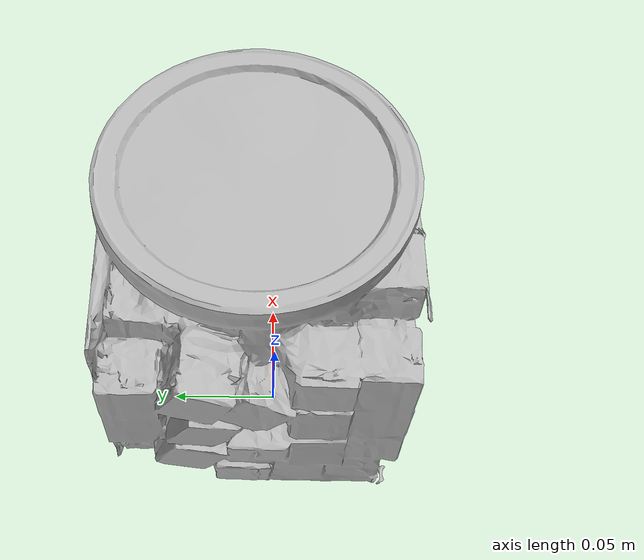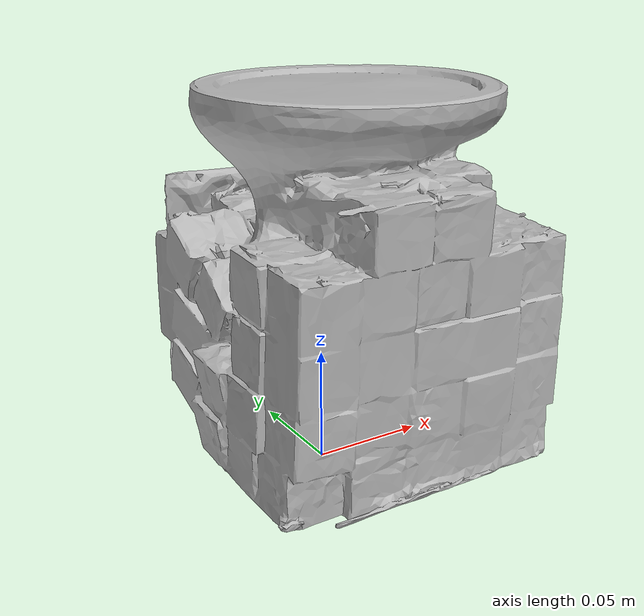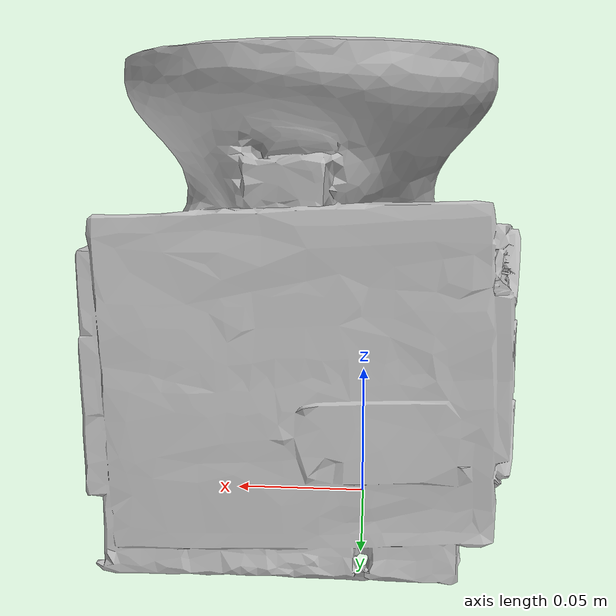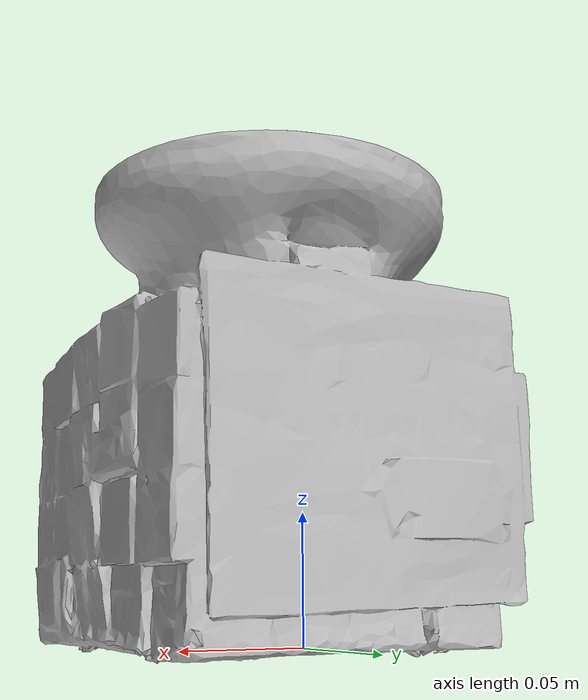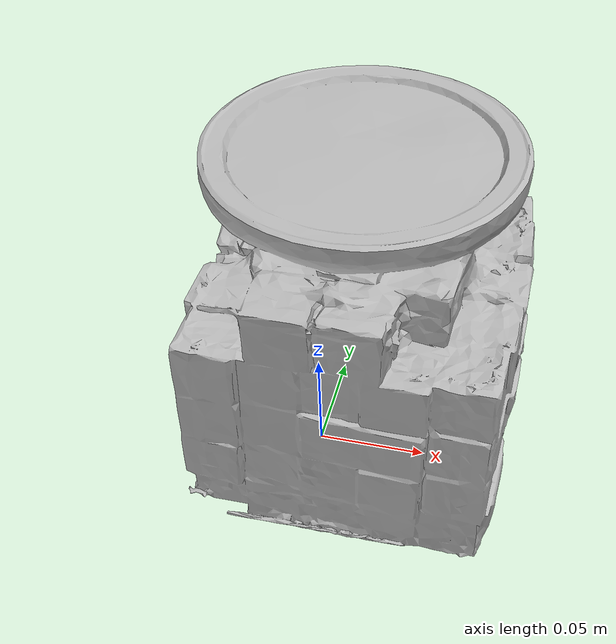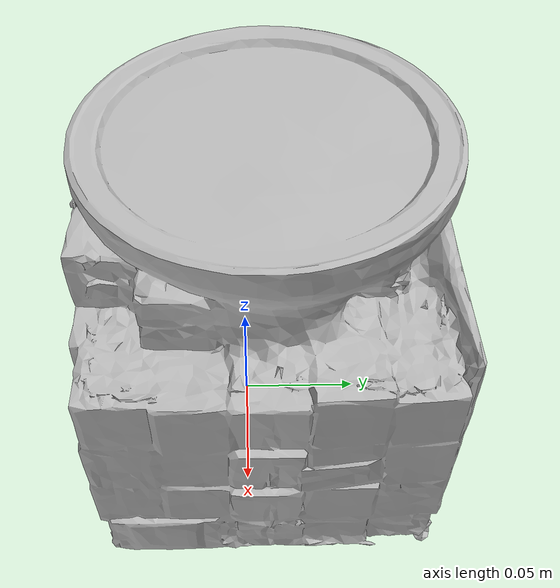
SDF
<?xml version='1.0'?>
<sdf version="1.4">
  <model name="a_colored_wood_blocks">
    <static>false</static>
    <link name="link">
      <inertial>
        <pose>0.021190156205370264 0.00854537346766546 0.07390911070766726 3.1186793689628387 0.03979213980283061 2.8366317202452724</pose>
        <mass>0.0023463367230017076</mass>
        <inertia>
          <ixx>7.759890525927945e-06</ixx>
          <ixy>-4.447151950569841e-22</ixy>
          <ixz>6.293630874722829e-22</ixz>
          <iyy>7.470598943639884e-06</iyy>
          <iyz>1.6737264118416751e-21</iyz>
          <izz>6.172891559358158e-06</izz>
        </inertia>
      </inertial>
      <collision name="collision">
        <geometry>
          <mesh>
            <!-- Use a downsampled mesh for collisions -->
            <uri>model://070-a_colored_wood_blocks/google_16k/070-a_colored_wood_blocks.obj</uri>
            </mesh>
        </geometry>
        <surface>
          <friction>
            <ode>
              <mu>0.9</mu>
              <mu2>0.9</mu2>
            </ode>
          </friction>
          <contact>
            <ode>
              <kp>1000000000000.0</kp>
              <kd>1</kd>
              <min_depth>0.0001</min_depth>
              <max_vel>0.01</max_vel>
            </ode>
          </contact>
          <bounce>
            <restitution_coefficient>0.1</restitution_coefficient>
            <threshold>1000.0</threshold>
          </bounce>
        </surface>
      </collision>
      <visual name="visual">
        <geometry>
          <mesh>
            <uri>model://070-a_colored_wood_blocks/google_16k/070-a_colored_wood_blocks.dae</uri>
            </mesh>
        </geometry>
      </visual>
    </link>
  </model>
</sdf>
